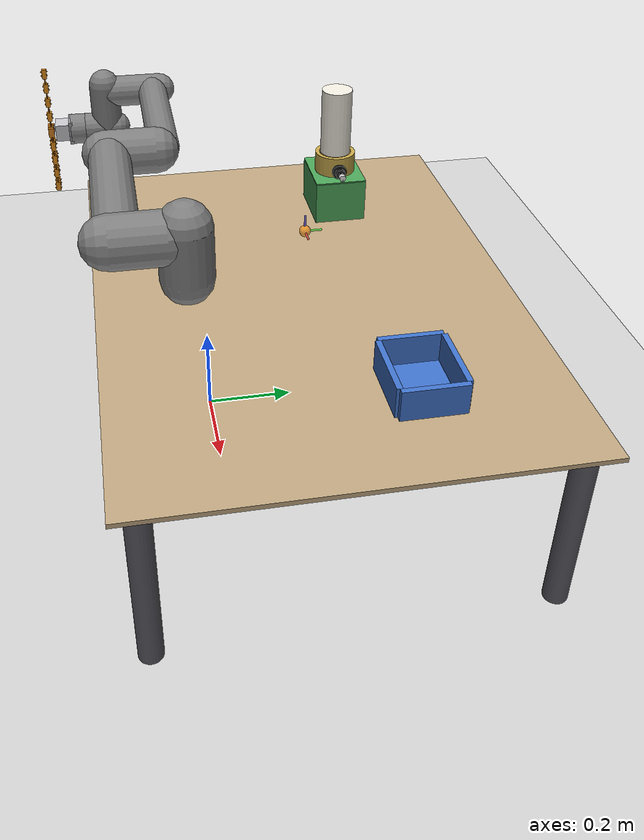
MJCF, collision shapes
<mujoco model="ur5e_3finger_gripper">
  <!--
    UR5e + 3-Finger Compliant Gripper — Pick & Place Simulation
  -->

  <compiler angle="radian" meshdir="assets" autolimits="true"/>

  <option gravity="0 0 -9.81" timestep="0.001" integrator="implicit"
          solver="Newton" iterations="150" cone="elliptic"
          noslip_iterations="3" noslip_tolerance="1e-6">
    <flag warmstart="enable"/>
  </option>

  <visual>
    <headlight ambient="0.5 0.5 0.5" diffuse="0.8 0.8 0.8"/>
    <rgba haze="0.10 0.18 0.28 1"/>
    <quality shadowsize="4096"/>
    <map znear="0.001"/>
  </visual>

  <default>
    <!-- ═══ UR5e defaults ═══ -->
    <default class="ur5e">
      <material specular="0.5" shininess="0.25"/>
      <joint axis="0 1 0" range="-6.28319 6.28319" armature="0.1"/>
      <general gaintype="fixed" biastype="affine" ctrlrange="-6.2831 6.2831"
        gainprm="2000" biasprm="0 -2000 -400" forcerange="-150 150"/>
      <default class="size3">
        <default class="size3_limited">
          <joint range="-3.1415 3.1415"/>
          <general ctrlrange="-3.1415 3.1415"/>
        </default>
      </default>
      <default class="size1">
        <general gainprm="500" biasprm="0 -500 -100" forcerange="-28 28"/>
      </default>
      <default class="visual">
        <geom type="mesh" contype="0" conaffinity="0" group="2"/>
      </default>
      <default class="collision">
        <geom type="capsule" group="3"/>
        <default class="eef_collision">
          <geom type="cylinder"/>
        </default>
      </default>
      <site size="0.001" rgba="0.5 0.5 0.5 0.3" group="4"/>
    </default>

    <!-- ═══ Gripper defaults ═══ -->
    <default class="finger_link">
      <geom type="box" density="1100" friction="2.8 0.8 0.02"
            rgba="0.88 0.55 0.10 1" contype="1" conaffinity="1"
            condim="6" solref="0.012 1.0" solimp="0.82 0.95 0.008"
            margin="0.003"/>
    </default>
    <default class="finger_joint_geom">
      <geom type="box" density="1100" contype="1" conaffinity="1"
            condim="6" friction="2.8 0.8 0.02"
            solref="0.012 1.0" solimp="0.82 0.95 0.008"
            margin="0.003"/>
    </default>
    <default class="palm_link">
      <geom type="box" density="1300" friction="2.8 0.8 0.02"
            rgba="0.82 0.50 0.12 1" contype="1" conaffinity="1"
            condim="6" solref="0.012 1.0" solimp="0.82 0.95 0.008"
            margin="0.003"/>
    </default>
    <default class="finger_joint">
      <joint type="hinge" damping="0.018" armature="1e-5"
             limited="true" range="0 3.14"/>
    </default>
    <default class="finger_lip">
      <geom type="sphere" density="0" contype="1" conaffinity="1"
            condim="6" friction="2.8 0.8 0.02"
            solref="0.016 1.0" solimp="0.78 0.92 0.010"
            rgba="0.88 0.55 0.10 0" margin="0.003"/>
    </default>
    <!-- Tray walls: thin collision-enabled boxes -->
    <default class="tray_wall">
      <geom type="box" contype="1" conaffinity="1" friction="0.8 0.3 0.01"/>
    </default>
  </default>

  <asset>
    <!-- UR5e meshes -->
    <mesh file="base_0.obj"/>
    <mesh file="base_1.obj"/>
    <mesh file="shoulder_0.obj"/>
    <mesh file="shoulder_1.obj"/>
    <mesh file="shoulder_2.obj"/>
    <mesh file="upperarm_0.obj"/>
    <mesh file="upperarm_1.obj"/>
    <mesh file="upperarm_2.obj"/>
    <mesh file="upperarm_3.obj"/>
    <mesh file="forearm_0.obj"/>
    <mesh file="forearm_1.obj"/>
    <mesh file="forearm_2.obj"/>
    <mesh file="forearm_3.obj"/>
    <mesh file="wrist1_0.obj"/>
    <mesh file="wrist1_1.obj"/>
    <mesh file="wrist1_2.obj"/>
    <mesh file="wrist2_0.obj"/>
    <mesh file="wrist2_1.obj"/>
    <mesh file="wrist2_2.obj"/>
    <mesh file="wrist3.obj"/>

    <!-- UR5e materials -->
    <material class="ur5e" name="black"     rgba="0.05 0.05 0.05 1"/>
    <material class="ur5e" name="jointgray" rgba="0.30 0.30 0.30 1"/>
    <material class="ur5e" name="linkgray"  rgba="0.85 0.85 0.85 1"/>
    <material class="ur5e" name="urblue"    rgba="0.20 0.50 0.80 1"/>

    <!-- Scene textures/materials -->
    <texture type="skybox" builtin="gradient" rgb1="0.55 0.70 0.85" rgb2="0.12 0.12 0.20"
             width="512" height="3072"/>
    <texture name="grid" type="2d" builtin="checker"
             rgb1="0.88 0.88 0.88" rgb2="0.76 0.76 0.76"
             width="256" height="256"/>
    <material name="grid_mat" texture="grid" texrepeat="6 6" reflectance="0.12"/>
    <material name="table_mat" rgba="0.75 0.65 0.50 1" specular="0.15" shininess="0.15"/>
    <material name="pedestal_mat" rgba="0.35 0.35 0.38 1" specular="0.4" shininess="0.3"/>

    <!-- Gripper materials -->
    <material name="body_mat"      rgba="0.78 0.78 0.80 1"/>
    <material name="body_base_mat" rgba="0.62 0.62 0.64 1"/>
    <material name="coupling_mat"  rgba="0.55 0.55 0.57 1" specular="0.4"/>
    <material name="joint1_mat"    rgba="0.55 0.30 0.05 1"/>
    <material name="joint2_mat"    rgba="0.62 0.36 0.08 1"/>
    <material name="joint3_mat"    rgba="0.70 0.42 0.10 1"/>

    <!-- Object materials -->
    <material name="object3_mat"             rgba="0.85 0.25 0.25 1.0"  specular="0.5" shininess="0.4"/>
    <material name="paper_towel_mat"         rgba="0.95 0.93 0.88 1.0"  specular="0.05"/>
    <material name="paint_tube_mat"          rgba="0.10 0.10 0.10 1.0"  specular="0.15"/>
    <material name="paint_tube_label_mat"    rgba="0.10 0.55 0.55 1.0"  specular="0.20"/>
    <material name="paint_tube_cap_mat"      rgba="0.88 0.88 0.88 1.0"  specular="0.40"/>
    <material name="screwdriver_handle_mat"  rgba="0.85 0.18 0.18 1.0"  specular="0.10"/>
    <material name="screwdriver_shaft_mat"   rgba="0.80 0.80 0.82 1.0"  specular="0.70"/>
    <material name="tape_roll_mat"           rgba="0.78 0.66 0.29 1.0"  specular="0.25"/>
    <material name="tape_core_mat"           rgba="0.54 0.44 0.25 1.0"  specular="0.10"/>

    <!-- Tray materials -->
    <material name="pick_tray_mat"  rgba="0.30 0.65 0.35 0.85" specular="0.1"/>
    <material name="place_tray_mat" rgba="0.25 0.45 0.80 0.85"  specular="0.1"/>

    <!-- Target marker -->
    <material name="target_mat" rgba="1.0 0.6 0.1 0.7" specular="0.0"/>
  </asset>

  <worldbody>
    <!-- ═══ LIGHTING ═══ -->
    <light name="main_light"   pos="0.3 0.0 2.8" dir="0 0 -1"  directional="true"
           diffuse="0.70 0.70 0.70" specular="0.3 0.3 0.3" castshadow="true"/>
    <light name="fill_light"   pos="-1.0 1.0 2.0" dir="0.4 -0.3 -0.8"
           diffuse="0.35 0.38 0.42" castshadow="false"/>
    <light name="back_light"   pos="0.8 -0.8 1.5" dir="-0.3 0.3 -0.6"
           diffuse="0.20 0.20 0.25" castshadow="false"/>

    <geom name="floor" size="0 0 0.05" type="plane" material="grid_mat"
          contype="1" conaffinity="1"/>

    <!-- ═══ WORK TABLE (expanded for more arm clearance) ═══ -->
    <geom name="table_top" type="box" pos="0.15 0.20 0.395"
          size="0.62 0.45 0.005" material="table_mat"
          contype="1" conaffinity="1" friction="1.0 0.5 0.01"/>
    <geom name="table_leg1" type="cylinder" pos="-0.42 -0.20 0.195"
          size="0.025 0.195" material="pedestal_mat" contype="0" conaffinity="0"/>
    <geom name="table_leg2" type="cylinder" pos="0.72 -0.20 0.195"
          size="0.025 0.195" material="pedestal_mat" contype="0" conaffinity="0"/>
    <geom name="table_leg3" type="cylinder" pos="-0.42 0.60 0.195"
          size="0.025 0.195" material="pedestal_mat" contype="0" conaffinity="0"/>
    <geom name="table_leg4" type="cylinder" pos="0.72 0.60 0.195"
          size="0.025 0.195" material="pedestal_mat" contype="0" conaffinity="0"/>

    <!-- ═══ PICK PEDESTAL (green) — flat platform, no walls ═══
         Centre: x=-0.22, y=0.35, top surface at z=0.500
         150×120mm footprint — fits tape roll (95mm) with margin.  -->
    <geom name="pick_pedestal" type="box"
          pos="-0.22 0.35 0.450"
          size="0.075 0.060 0.050"
          material="pick_tray_mat" contype="1" conaffinity="1"/>
    <geom name="pick_pedestal_top" type="box"
          pos="-0.22 0.35 0.5015"
          size="0.075 0.060 0.0015"
          material="pick_tray_mat" contype="1" conaffinity="1"/>

    <!-- ═══ PLACE BOX (blue) — open-top box for catching dropped objects ═══
         Centre: x=0.52, y=0.35, floor at z=0.403 (table level)
         150×120mm interior, walls 6mm thick, 60mm tall -->
    <!-- floor -->
    <geom name="place_box_floor" type="box"
          pos="0.52 0.35 0.4015"
          size="0.075 0.060 0.0015"
          material="place_tray_mat" contype="1" conaffinity="1"/>
    <!-- front wall (-Y) -->
    <geom name="place_box_w_front" class="tray_wall"
          pos="0.52 0.284 0.433"
          size="0.075 0.006 0.033"
          material="place_tray_mat"/>
    <!-- back wall (+Y) -->
    <geom name="place_box_w_back" class="tray_wall"
          pos="0.52 0.416 0.433"
          size="0.075 0.006 0.033"
          material="place_tray_mat"/>
    <!-- left wall (-X) -->
    <geom name="place_box_w_left" class="tray_wall"
          pos="0.439 0.35 0.433"
          size="0.006 0.066 0.033"
          material="place_tray_mat"/>
    <!-- right wall (+X) -->
    <geom name="place_box_w_right" class="tray_wall"
          pos="0.601 0.35 0.433"
          size="0.006 0.066 0.033"
          material="place_tray_mat"/>

    <!-- ═══ UR5e ARM on the table (centered between trays) ═══ -->
    <body name="base" pos="0.15 -0.05 0.40" quat="0 0 0 -1" childclass="ur5e">
      <inertial mass="4.0" pos="0 0 0" diaginertia="0.00443333156 0.00443333156 0.0072"/>
      <geom mesh="base_0" material="black"     class="visual"/>
      <geom mesh="base_1" material="jointgray" class="visual"/>

      <body name="shoulder_link" pos="0 0 0.163">
        <inertial mass="3.7" pos="0 0 0" diaginertia="0.0102675 0.0102675 0.00666"/>
        <joint name="shoulder_pan_joint" class="size3" axis="0 0 1"/>
        <geom mesh="shoulder_0" material="urblue"    class="visual"/>
        <geom mesh="shoulder_1" material="black"     class="visual"/>
        <geom mesh="shoulder_2" material="jointgray" class="visual"/>
        <geom class="collision" size="0.06 0.06" pos="0 0 -0.04"/>

        <body name="upper_arm_link" pos="0 0.138 0" quat="1 0 1 0">
          <inertial mass="8.393" pos="0 0 0.2125" diaginertia="0.133886 0.133886 0.0151074"/>
          <joint name="shoulder_lift_joint" class="size3"/>
          <geom mesh="upperarm_0" material="linkgray"  class="visual"/>
          <geom mesh="upperarm_1" material="black"     class="visual"/>
          <geom mesh="upperarm_2" material="jointgray" class="visual"/>
          <geom mesh="upperarm_3" material="urblue"    class="visual"/>
          <geom class="collision" pos="0 -0.04 0" quat="1 1 0 0" size="0.06 0.06"/>
          <geom class="collision" size="0.05 0.2" pos="0 0 0.2"/>

          <body name="forearm_link" pos="0 -0.131 0.425">
            <inertial mass="2.275" pos="0 0 0.196" diaginertia="0.0311796 0.0311796 0.004095"/>
            <joint name="elbow_joint" class="size3_limited"/>
            <geom mesh="forearm_0" material="urblue"    class="visual"/>
            <geom mesh="forearm_1" material="linkgray"  class="visual"/>
            <geom mesh="forearm_2" material="black"     class="visual"/>
            <geom mesh="forearm_3" material="jointgray" class="visual"/>
            <geom class="collision" pos="0 0.08 0" quat="1 1 0 0" size="0.055 0.06"/>
            <geom class="collision" size="0.038 0.19" pos="0 0 0.2"/>

            <body name="wrist_1_link" pos="0 0 0.392" quat="1 0 1 0">
              <inertial mass="1.219" pos="0 0.127 0" diaginertia="0.0025599 0.0025599 0.0021942"/>
              <joint name="wrist_1_joint" class="size1"/>
              <geom mesh="wrist1_0" material="black"     class="visual"/>
              <geom mesh="wrist1_1" material="urblue"    class="visual"/>
              <geom mesh="wrist1_2" material="jointgray" class="visual"/>
              <geom class="collision" pos="0 0.05 0" quat="1 1 0 0" size="0.04 0.07"/>

              <body name="wrist_2_link" pos="0 0.127 0">
                <inertial mass="1.219" pos="0 0 0.1" diaginertia="0.0025599 0.0025599 0.0021942"/>
                <joint name="wrist_2_joint" axis="0 0 1" class="size1"/>
                <geom mesh="wrist2_0" material="black"     class="visual"/>
                <geom mesh="wrist2_1" material="urblue"    class="visual"/>
                <geom mesh="wrist2_2" material="jointgray" class="visual"/>
                <geom class="collision" size="0.04 0.06" pos="0 0 0.04"/>
                <geom class="collision" pos="0 0.02 0.1" quat="1 1 0 0" size="0.04 0.04"/>

                <body name="wrist_3_link" pos="0 0 0.1">
                  <inertial mass="0.1889" pos="0 0.0771683 0" quat="1 0 0 1"
                    diaginertia="0.000132134 9.90863e-05 9.90863e-05"/>
                  <joint name="wrist_3_joint" class="size1"/>
                  <geom material="linkgray" mesh="wrist3" class="visual"/>
                  <geom class="eef_collision" pos="0 0.08 0" quat="1 1 0 0" size="0.04 0.02"/>
                  <site name="attachment_site" pos="0 0.1 0" quat="-1 1 0 0"/>

                  <body name="gripper_base" pos="0 0.153 0" quat="0.7071 -0.7071 0 0">

                    <geom name="coupling" type="cylinder" size="0.022 0.012"
                          pos="0 0 -0.065" material="coupling_mat"
                          contype="0" conaffinity="0"/>
                    <geom name="body_main" type="box" size="0.026 0.022 0.018"
                          pos="0 0 -0.030" material="body_mat"
                          contype="0" conaffinity="0"/>
                    <geom name="body_plate" type="box" size="0.033 0.030 0.005"
                          pos="0 0 -0.053" material="body_base_mat"
                          contype="0" conaffinity="0"/>

                    <site name="tcp" pos="0 0 0.02" size="0.005" rgba="1 0.2 0.2 0.8"/>

                    <!-- ══ FINGER A ══ -->
                    <body name="A_palm" pos="-0.014 0.012 0" euler="0 0 -1.5708">
                      <joint name="A_splay" type="hinge" axis="0 0 -1"
                             limited="true" range="0 0.5236"
                             damping="0.05" stiffness="0.5" armature="1e-4"/>
                      <geom name="A_palm_geom" class="palm_link"
                            size="0.0125 0.005 0.0075" pos="0.0125 0 0"/>
                      <body name="A_link0" pos="0.025 0 0">
                        <joint name="A_j0" class="finger_joint" axis="0 -1 0" stiffness="0.05750"/>
                        <geom name="A_j0_geom" class="finger_joint_geom" material="joint1_mat"
                              size="0.0075 0.005 0.001625" pos="0.0075 0 0"/>
                        <geom name="A_l0_geom" class="finger_link"
                              size="0.0125 0.005 0.006" pos="0.0275 0 0"/>
                        <geom name="A_l0_lip_a" class="finger_lip" pos="0.033 0 0.007" size="0.002"/>
                        <geom name="A_l0_lip_b" class="finger_lip" pos="0.033 0 -0.007" size="0.002"/>
                        <geom name="A_l0_lip_c" class="finger_lip" pos="0.0225 0 0.007" size="0.002"/>
                        <geom name="A_l0_lip_d" class="finger_lip" pos="0.0225 0 -0.007" size="0.002"/>
                        <body name="A_link1" pos="0.040 0 0">
                          <joint name="A_j1" class="finger_joint" axis="0 -1 0" stiffness="0.05750"/>
                          <geom name="A_j1_geom" class="finger_joint_geom" material="joint1_mat"
                                size="0.0075 0.005 0.001625" pos="0.0075 0 0"/>
                          <geom name="A_l1_geom" class="finger_link"
                                size="0.0125 0.005 0.006" pos="0.0275 0 0"/>
                          <geom name="A_l1_lip_a" class="finger_lip" pos="0.033 0 0.007" size="0.002"/>
                          <geom name="A_l1_lip_b" class="finger_lip" pos="0.033 0 -0.007" size="0.002"/>
                          <geom name="A_l1_lip_c" class="finger_lip" pos="0.0225 0 0.007" size="0.002"/>
                          <geom name="A_l1_lip_d" class="finger_lip" pos="0.0225 0 -0.007" size="0.002"/>
                          <site name="A_force1" pos="0.0275 0 0.012" size="0.008" rgba="1 0 0 0"/>
                          <body name="A_link2" pos="0.040 0 0">
                            <joint name="A_j2" class="finger_joint" axis="0 -1 0" stiffness="0.05750"/>
                            <geom name="A_j2_geom" class="finger_joint_geom" material="joint2_mat"
                                  size="0.0075 0.005 0.001625" pos="0.0075 0 0"/>
                            <geom name="A_l2_geom" class="finger_link"
                                  size="0.0125 0.005 0.006" pos="0.0275 0 0"/>
                            <geom name="A_l2_lip_a" class="finger_lip" pos="0.033 0 0.007" size="0.002"/>
                            <geom name="A_l2_lip_b" class="finger_lip" pos="0.033 0 -0.007" size="0.002"/>
                            <geom name="A_l2_lip_c" class="finger_lip" pos="0.0225 0 0.007" size="0.002"/>
                            <geom name="A_l2_lip_d" class="finger_lip" pos="0.0225 0 -0.007" size="0.002"/>
                            <site name="A_force2" pos="0.0275 0 0.012" size="0.008" rgba="1 0 0 0"/>
                            <body name="A_link3" pos="0.040 0 0">
                              <joint name="A_j3" class="finger_joint" axis="0 -1 0" stiffness="0.07182"/>
                              <geom name="A_j3_geom" class="finger_joint_geom" material="joint3_mat"
                                    size="0.0075 0.005 0.00175" pos="0.0075 0 0"/>
                              <geom name="A_l3_geom" class="finger_link"
                                    size="0.0125 0.005 0.006" pos="0.0275 0 0"/>
                              <geom name="A_l3_lip_a" class="finger_lip" pos="0.033 0 0.007" size="0.002"/>
                              <geom name="A_l3_lip_b" class="finger_lip" pos="0.033 0 -0.007" size="0.002"/>
                              <geom name="A_l3_lip_c" class="finger_lip" pos="0.0225 0 0.007" size="0.002"/>
                              <geom name="A_l3_lip_d" class="finger_lip" pos="0.0225 0 -0.007" size="0.002"/>
                              <site name="A_force3" pos="0.0275 0 0.012" size="0.008" rgba="1 0 0 0"/>
                              <site name="A_tip" pos="0.040 0 0" size="0.003" rgba="0.95 0.25 0.2 1"/>
                            </body>
                          </body>
                        </body>
                      </body>
                    </body>

                    <!-- ══ FINGER B ══ -->
                    <body name="B_palm" pos="0.014 0.012 0" euler="0 0 -1.5708">
                      <joint name="B_splay" type="hinge" axis="0 0 1"
                             limited="true" range="0 0.5236"
                             damping="0.05" stiffness="0.5" armature="1e-4"/>
                      <geom name="B_palm_geom" class="palm_link"
                            size="0.0125 0.005 0.0075" pos="0.0125 0 0"/>
                      <body name="B_link0" pos="0.025 0 0">
                        <joint name="B_j0" class="finger_joint" axis="0 -1 0" stiffness="0.05750"/>
                        <geom name="B_j0_geom" class="finger_joint_geom" material="joint1_mat"
                              size="0.0075 0.005 0.001625" pos="0.0075 0 0"/>
                        <geom name="B_l0_geom" class="finger_link"
                              size="0.0125 0.005 0.006" pos="0.0275 0 0"/>
                        <geom name="B_l0_lip_a" class="finger_lip" pos="0.033 0 0.007" size="0.002"/>
                        <geom name="B_l0_lip_b" class="finger_lip" pos="0.033 0 -0.007" size="0.002"/>
                        <geom name="B_l0_lip_c" class="finger_lip" pos="0.0225 0 0.007" size="0.002"/>
                        <geom name="B_l0_lip_d" class="finger_lip" pos="0.0225 0 -0.007" size="0.002"/>
                        <body name="B_link1" pos="0.040 0 0">
                          <joint name="B_j1" class="finger_joint" axis="0 -1 0" stiffness="0.05750"/>
                          <geom name="B_j1_geom" class="finger_joint_geom" material="joint1_mat"
                                size="0.0075 0.005 0.001625" pos="0.0075 0 0"/>
                          <geom name="B_l1_geom" class="finger_link"
                                size="0.0125 0.005 0.006" pos="0.0275 0 0"/>
                          <geom name="B_l1_lip_a" class="finger_lip" pos="0.033 0 0.007" size="0.002"/>
                          <geom name="B_l1_lip_b" class="finger_lip" pos="0.033 0 -0.007" size="0.002"/>
                          <geom name="B_l1_lip_c" class="finger_lip" pos="0.0225 0 0.007" size="0.002"/>
                          <geom name="B_l1_lip_d" class="finger_lip" pos="0.0225 0 -0.007" size="0.002"/>
                          <site name="B_force1" pos="0.0275 0 0.012" size="0.008" rgba="1 0 0 0"/>
                          <body name="B_link2" pos="0.040 0 0">
                            <joint name="B_j2" class="finger_joint" axis="0 -1 0" stiffness="0.05750"/>
                            <geom name="B_j2_geom" class="finger_joint_geom" material="joint2_mat"
                                  size="0.0075 0.005 0.001625" pos="0.0075 0 0"/>
                            <geom name="B_l2_geom" class="finger_link"
                                  size="0.0125 0.005 0.006" pos="0.0275 0 0"/>
                            <geom name="B_l2_lip_a" class="finger_lip" pos="0.033 0 0.007" size="0.002"/>
                            <geom name="B_l2_lip_b" class="finger_lip" pos="0.033 0 -0.007" size="0.002"/>
                            <geom name="B_l2_lip_c" class="finger_lip" pos="0.0225 0 0.007" size="0.002"/>
                            <geom name="B_l2_lip_d" class="finger_lip" pos="0.0225 0 -0.007" size="0.002"/>
                            <site name="B_force2" pos="0.0275 0 0.012" size="0.008" rgba="1 0 0 0"/>
                            <body name="B_link3" pos="0.040 0 0">
                              <joint name="B_j3" class="finger_joint" axis="0 -1 0" stiffness="0.07182"/>
                              <geom name="B_j3_geom" class="finger_joint_geom" material="joint3_mat"
                                    size="0.0075 0.005 0.00175" pos="0.0075 0 0"/>
                              <geom name="B_l3_geom" class="finger_link"
                                    size="0.0125 0.005 0.006" pos="0.0275 0 0"/>
                              <geom name="B_l3_lip_a" class="finger_lip" pos="0.033 0 0.007" size="0.002"/>
                              <geom name="B_l3_lip_b" class="finger_lip" pos="0.033 0 -0.007" size="0.002"/>
                              <geom name="B_l3_lip_c" class="finger_lip" pos="0.0225 0 0.007" size="0.002"/>
                              <geom name="B_l3_lip_d" class="finger_lip" pos="0.0225 0 -0.007" size="0.002"/>
                              <site name="B_force3" pos="0.0275 0 0.012" size="0.008" rgba="1 0 0 0"/>
                              <site name="B_tip" pos="0.040 0 0" size="0.003" rgba="0.95 0.25 0.2 1"/>
                            </body>
                          </body>
                        </body>
                      </body>
                    </body>

                    <!-- ══ FINGER C (opposing) ══ -->
                    <body name="C_palm" pos="0 -0.012 0" euler="0 0 1.5708">
                      <geom name="C_palm_geom" class="palm_link"
                            size="0.0125 0.005 0.0075" pos="0.0125 0 0"/>
                      <body name="C_link0" pos="0.025 0 0">
                        <joint name="C_j0" class="finger_joint" axis="0 -1 0" stiffness="0.05750"/>
                        <geom name="C_j0_geom" class="finger_joint_geom" material="joint1_mat"
                              size="0.0075 0.005 0.001625" pos="0.0075 0 0"/>
                        <geom name="C_l0_geom" class="finger_link"
                              size="0.0125 0.005 0.006" pos="0.0275 0 0"/>
                        <geom name="C_l0_lip_a" class="finger_lip" pos="0.033 0 0.007" size="0.002"/>
                        <geom name="C_l0_lip_b" class="finger_lip" pos="0.033 0 -0.007" size="0.002"/>
                        <geom name="C_l0_lip_c" class="finger_lip" pos="0.0225 0 0.007" size="0.002"/>
                        <geom name="C_l0_lip_d" class="finger_lip" pos="0.0225 0 -0.007" size="0.002"/>
                        <body name="C_link1" pos="0.040 0 0">
                          <joint name="C_j1" class="finger_joint" axis="0 -1 0" stiffness="0.05750"/>
                          <geom name="C_j1_geom" class="finger_joint_geom" material="joint1_mat"
                                size="0.0075 0.005 0.001625" pos="0.0075 0 0"/>
                          <geom name="C_l1_geom" class="finger_link"
                                size="0.0125 0.005 0.006" pos="0.0275 0 0"/>
                          <geom name="C_l1_lip_a" class="finger_lip" pos="0.033 0 0.007" size="0.002"/>
                          <geom name="C_l1_lip_b" class="finger_lip" pos="0.033 0 -0.007" size="0.002"/>
                          <geom name="C_l1_lip_c" class="finger_lip" pos="0.0225 0 0.007" size="0.002"/>
                          <geom name="C_l1_lip_d" class="finger_lip" pos="0.0225 0 -0.007" size="0.002"/>
                          <site name="C_force1" pos="0.0275 0 0.012" size="0.008" rgba="1 0 0 0"/>
                          <body name="C_link2" pos="0.040 0 0">
                            <joint name="C_j2" class="finger_joint" axis="0 -1 0" stiffness="0.05750"/>
                            <geom name="C_j2_geom" class="finger_joint_geom" material="joint2_mat"
                                  size="0.0075 0.005 0.001625" pos="0.0075 0 0"/>
                            <geom name="C_l2_geom" class="finger_link"
                                  size="0.0125 0.005 0.006" pos="0.0275 0 0"/>
                            <geom name="C_l2_lip_a" class="finger_lip" pos="0.033 0 0.007" size="0.002"/>
                            <geom name="C_l2_lip_b" class="finger_lip" pos="0.033 0 -0.007" size="0.002"/>
                            <geom name="C_l2_lip_c" class="finger_lip" pos="0.0225 0 0.007" size="0.002"/>
                            <geom name="C_l2_lip_d" class="finger_lip" pos="0.0225 0 -0.007" size="0.002"/>
                            <site name="C_force2" pos="0.0275 0 0.012" size="0.008" rgba="1 0 0 0"/>
                            <body name="C_link3" pos="0.040 0 0">
                              <joint name="C_j3" class="finger_joint" axis="0 -1 0" stiffness="0.07182"/>
                              <geom name="C_j3_geom" class="finger_joint_geom" material="joint3_mat"
                                    size="0.0075 0.005 0.00175" pos="0.0075 0 0"/>
                              <geom name="C_l3_geom" class="finger_link"
                                    size="0.0125 0.005 0.006" pos="0.0275 0 0"/>
                              <geom name="C_l3_lip_a" class="finger_lip" pos="0.033 0 0.007" size="0.002"/>
                              <geom name="C_l3_lip_b" class="finger_lip" pos="0.033 0 -0.007" size="0.002"/>
                              <geom name="C_l3_lip_c" class="finger_lip" pos="0.0225 0 0.007" size="0.002"/>
                              <geom name="C_l3_lip_d" class="finger_lip" pos="0.0225 0 -0.007" size="0.002"/>
                              <site name="C_force3" pos="0.0275 0 0.012" size="0.008" rgba="1 0 0 0"/>
                              <site name="C_tip" pos="0.040 0 0" size="0.003" rgba="0.95 0.25 0.2 1"/>
                            </body>
                          </body>
                        </body>
                      </body>
                    </body>

                  </body> <!-- /gripper_base -->
                </body> <!-- /wrist_3_link -->
              </body> <!-- /wrist_2_link -->
            </body> <!-- /wrist_1_link -->
          </body> <!-- /forearm_link -->
        </body> <!-- /upper_arm_link -->
      </body> <!-- /shoulder_link -->
    </body> <!-- /base -->

    <!-- ═══ GRASPABLE OBJECTS — start in the PICK TRAY ═══ -->
    <!-- Pick tray centre: x=-0.22, y=0.35. Objects spread within ±60mm x, ±50mm y -->

    <!-- Sphere (Ø32mm) -->
    <body name="obj_sphere" pos="-0.22 0.35 0.518">
      <freejoint name="obj_sphere_jnt"/>
      <geom name="obj_sphere_geom" type="sphere" size="0.016"
            density="800" material="object3_mat"
            friction="1.2 0.5 0.01" contype="1" conaffinity="1"
            condim="6" solref="0.005 1.0"/>
    </body>

    <!-- Paint Tube (horizontal) -->
    <body name="obj_paint_tube" pos="-0.22 0.35 0.519" euler="0 1.5708 0">
      <freejoint name="obj_paint_tube_jnt"/>
      <geom name="obj_pt_body" type="cylinder" size="0.017 0.055"
            density="900" material="paint_tube_mat"
            friction="1.1 0.5 0.01" contype="1" conaffinity="1"
            condim="6" solref="0.008 1.0" solimp="0.92 0.98 0.001"/>
      <geom name="obj_pt_label" type="cylinder" size="0.0173 0.022" pos="0 0 -0.005"
            density="0" material="paint_tube_label_mat" contype="0" conaffinity="0"/>
      <geom name="obj_pt_crimp" type="box" size="0.0015 0.015 0.005" pos="0 0 -0.059"
            density="1200" material="paint_tube_mat" contype="0" conaffinity="0"/>
      <geom name="obj_pt_shoulder" type="cylinder" size="0.011 0.006" pos="0 0 0.061"
            density="900" material="paint_tube_mat" contype="0" conaffinity="0"/>
      <geom name="obj_pt_nozzle" type="cylinder" size="0.005 0.005" pos="0 0 0.072"
            density="900" material="paint_tube_mat" contype="0" conaffinity="0"/>
      <geom name="obj_pt_cap" type="cylinder" size="0.0075 0.005" pos="0 0 0.082"
            density="900" material="paint_tube_cap_mat" contype="0" conaffinity="0"/>
    </body>

    <!-- Screwdriver (horizontal) -->
    <body name="obj_screwdriver" pos="-0.22 0.35 0.515" euler="0 1.5708 0">
      <freejoint name="obj_screwdriver_jnt"/>
      <geom name="obj_sd_handle" type="cylinder" size="0.0127 0.025"
            density="1100" material="screwdriver_handle_mat"
            friction="1.8 0.8 0.01" contype="1" conaffinity="1"
            condim="6" solref="0.008 1.0" solimp="0.92 0.98 0.001"/>
      <geom name="obj_sd_grip" type="cylinder" size="0.014 0.002" pos="0 0 -0.005"
            density="0" material="screwdriver_handle_mat" contype="0" conaffinity="0"/>
      <geom name="obj_sd_ferrule" type="cylinder" size="0.006 0.004" pos="0 0 0.029"
            density="7800" material="screwdriver_shaft_mat"
            friction="0.8 0.3 0.01" contype="1" conaffinity="1"
            condim="6" solref="0.005 1.0"/>
      <geom name="obj_sd_shaft" type="cylinder" size="0.0015 0.031" pos="0 0 0.064"
            density="7800" material="screwdriver_shaft_mat"
            friction="0.8 0.3 0.01" contype="1" conaffinity="1"
            condim="6" solref="0.005 1.0"/>
    </body>

    <!-- Tape Roll (upright) -->
    <body name="obj_tape_roll" pos="-0.22 0.35 0.5254">
      <freejoint name="obj_tape_roll_jnt"/>
      <geom name="obj_tr_outer" type="cylinder" size="0.047625 0.0254"
            density="600" material="tape_roll_mat"
            friction="1.4 0.6 0.01" contype="1" conaffinity="1"
            condim="6" solref="0.008 1.0" solimp="0.92 0.98 0.001"/>
      <geom name="obj_tr_core" type="cylinder" size="0.0381 0.0255"
            density="0" material="tape_core_mat" contype="0" conaffinity="0"/>
    </body>

    <!-- Paper Towel Roll (vertical/upright) -->
    <body name="obj_paper_roll" pos="-0.22 0.35 0.605">
      <freejoint name="obj_paper_roll_jnt"/>
      <geom name="obj_paper_roll_geom" type="cylinder" size="0.0356 0.1016"
            density="80" material="paper_towel_mat"
            friction="1.2 0.5 0.01" contype="1" conaffinity="1"
            condim="6" solref="0.020 1.0" solimp="0.85 0.95 0.004" margin="0.001"/>
    </body>

    <!-- Target marker (IK visualiser) -->
    <body name="target_marker" pos="0.15 0.20 0.55" mocap="true">
      <geom name="target_geom" type="sphere" size="0.012" material="target_mat"
            contype="0" conaffinity="0"/>
      <geom name="target_x" type="cylinder" size="0.002 0.018"
            pos="0.018 0 0" euler="0 1.5708 0"
            rgba="1 0.2 0.2 0.7" contype="0" conaffinity="0"/>
      <geom name="target_y" type="cylinder" size="0.002 0.018"
            pos="0 0.018 0" euler="1.5708 0 0"
            rgba="0.2 1 0.2 0.7" contype="0" conaffinity="0"/>
      <geom name="target_z" type="cylinder" size="0.002 0.018"
            pos="0 0 0.018"
            rgba="0.2 0.2 1 0.7" contype="0" conaffinity="0"/>
    </body>

  </worldbody>

  <!-- ═══ TENDONS ═══ -->
  <tendon>
    <fixed name="tendon_A" limited="true" range="0 0.090">
      <joint joint="A_j0" coef="0.0050"/>
      <joint joint="A_j1" coef="0.0050"/>
      <joint joint="A_j2" coef="0.0050"/>
      <joint joint="A_j3" coef="0.0050"/>
    </fixed>
    <fixed name="tendon_B" limited="true" range="0 0.090">
      <joint joint="B_j0" coef="0.0050"/>
      <joint joint="B_j1" coef="0.0050"/>
      <joint joint="B_j2" coef="0.0050"/>
      <joint joint="B_j3" coef="0.0050"/>
    </fixed>
    <fixed name="tendon_C" limited="true" range="0 0.090">
      <joint joint="C_j0" coef="0.0050"/>
      <joint joint="C_j1" coef="0.0050"/>
      <joint joint="C_j2" coef="0.0050"/>
      <joint joint="C_j3" coef="0.0050"/>
    </fixed>
  </tendon>

  <!-- ═══ ACTUATORS ═══ -->
  <actuator>
    <general class="size3"         name="shoulder_pan"  joint="shoulder_pan_joint"/>
    <general class="size3"         name="shoulder_lift" joint="shoulder_lift_joint"/>
    <general class="size3_limited" name="elbow"         joint="elbow_joint"/>
    <general class="size1"         name="wrist_1"       joint="wrist_1_joint"/>
    <general class="size1"         name="wrist_2"       joint="wrist_2_joint"/>
    <general class="size1"         name="wrist_3"       joint="wrist_3_joint"/>

    <position name="act_A_pos" tendon="tendon_A"
              kp="2000" kv="50" ctrlrange="0 0.090" forcerange="-20 20"/>
    <position name="act_B_pos" tendon="tendon_B"
              kp="2000" kv="50" ctrlrange="0 0.090" forcerange="-20 20"/>
    <position name="act_C_pos" tendon="tendon_C"
              kp="2000" kv="50" ctrlrange="0 0.090" forcerange="-20 20"/>
    <general name="act_A_frc" tendon="tendon_A"
             gainprm="1 0 0" biasprm="0 0 0" ctrlrange="-10 10" forcerange="-20 20" dyntype="none"/>
    <general name="act_B_frc" tendon="tendon_B"
             gainprm="1 0 0" biasprm="0 0 0" ctrlrange="-10 10" forcerange="-20 20" dyntype="none"/>
    <general name="act_C_frc" tendon="tendon_C"
             gainprm="1 0 0" biasprm="0 0 0" ctrlrange="-10 10" forcerange="-20 20" dyntype="none"/>
    <position name="act_A_splay" joint="A_splay"
              kp="500" kv="20" ctrlrange="0 0.5236" forcerange="-10 10"/>
    <position name="act_B_splay" joint="B_splay"
              kp="500" kv="20" ctrlrange="0 0.5236" forcerange="-10 10"/>
  </actuator>

  <!-- ═══ SENSORS ═══ -->
  <sensor>
    <jointpos name="A_j0_pos" joint="A_j0"/>
    <jointpos name="A_j1_pos" joint="A_j1"/>
    <jointpos name="A_j2_pos" joint="A_j2"/>
    <jointpos name="A_j3_pos" joint="A_j3"/>
    <jointpos name="B_j0_pos" joint="B_j0"/>
    <jointpos name="B_j1_pos" joint="B_j1"/>
    <jointpos name="B_j2_pos" joint="B_j2"/>
    <jointpos name="B_j3_pos" joint="B_j3"/>
    <jointpos name="C_j0_pos" joint="C_j0"/>
    <jointpos name="C_j1_pos" joint="C_j1"/>
    <jointpos name="C_j2_pos" joint="C_j2"/>
    <jointpos name="C_j3_pos" joint="C_j3"/>
    <tendonpos name="ten_A_len" tendon="tendon_A"/>
    <tendonpos name="ten_B_len" tendon="tendon_B"/>
    <tendonpos name="ten_C_len" tendon="tendon_C"/>
    <touch name="A_touch1" site="A_force1"/>
    <touch name="A_touch2" site="A_force2"/>
    <touch name="A_touch3" site="A_force3"/>
    <touch name="B_touch1" site="B_force1"/>
    <touch name="B_touch2" site="B_force2"/>
    <touch name="B_touch3" site="B_force3"/>
    <touch name="C_touch1" site="C_force1"/>
    <touch name="C_touch2" site="C_force2"/>
    <touch name="C_touch3" site="C_force3"/>
  </sensor>

  <!-- ═══ CONTACT EXCLUSIONS ═══ -->
  <contact>
    <exclude body1="A_palm"  body2="A_link0"/>
    <exclude body1="A_link0" body2="A_link1"/>
    <exclude body1="A_link1" body2="A_link2"/>
    <exclude body1="A_link2" body2="A_link3"/>
    <exclude body1="B_palm"  body2="B_link0"/>
    <exclude body1="B_link0" body2="B_link1"/>
    <exclude body1="B_link1" body2="B_link2"/>
    <exclude body1="B_link2" body2="B_link3"/>
    <exclude body1="C_palm"  body2="C_link0"/>
    <exclude body1="C_link0" body2="C_link1"/>
    <exclude body1="C_link1" body2="C_link2"/>
    <exclude body1="C_link2" body2="C_link3"/>
    <exclude body1="gripper_base" body2="A_palm"/>
    <exclude body1="gripper_base" body2="B_palm"/>
    <exclude body1="gripper_base" body2="C_palm"/>
    <exclude body1="gripper_base" body2="A_link0"/>
    <exclude body1="gripper_base" body2="B_link0"/>
    <exclude body1="gripper_base" body2="C_link0"/>
    <exclude body1="gripper_base" body2="A_link1"/>
    <exclude body1="gripper_base" body2="B_link1"/>
    <exclude body1="gripper_base" body2="C_link1"/>
    <exclude body1="A_palm" body2="B_palm"/>
    <exclude body1="A_palm" body2="C_palm"/>
    <exclude body1="B_palm" body2="C_palm"/>
    <exclude body1="A_link0" body2="B_link0"/>
    <exclude body1="A_link0" body2="C_link0"/>
    <exclude body1="B_link0" body2="C_link0"/>
    <exclude body1="wrist_3_link" body2="gripper_base"/>
    <exclude body1="wrist_3_link" body2="A_palm"/>
    <exclude body1="wrist_3_link" body2="B_palm"/>
    <exclude body1="wrist_3_link" body2="C_palm"/>
    <exclude body1="wrist_2_link" body2="gripper_base"/>
  </contact>

  <!-- ═══ KEYFRAMES ═══ -->
  <keyframe>
    <key name="home"
         qpos="-1.5708 -1.5708 1.5708 1.5708 1.5708 0"
         ctrl="-1.5708 -1.5708 1.5708 1.5708 1.5708 0 0 0 0 0 0 0 0 0"/>
  </keyframe>

</mujoco>
